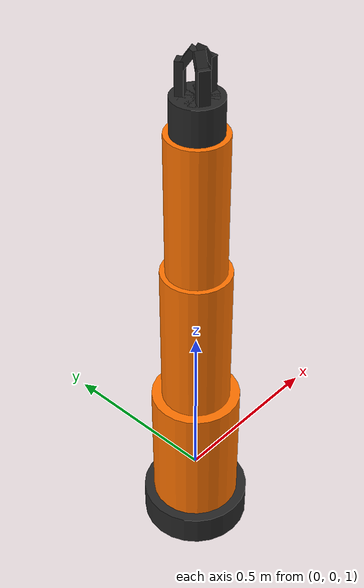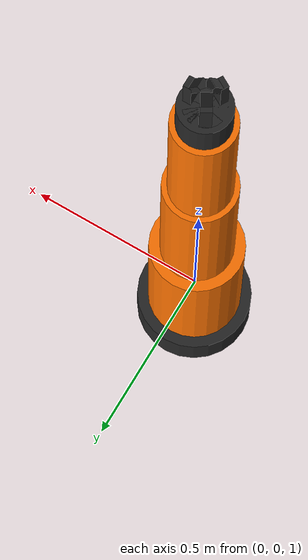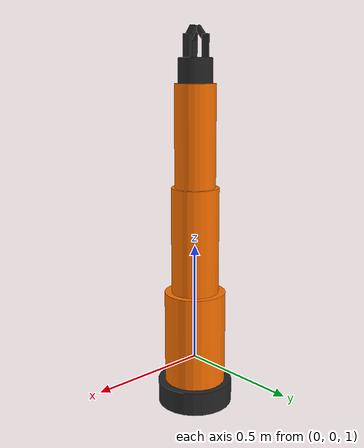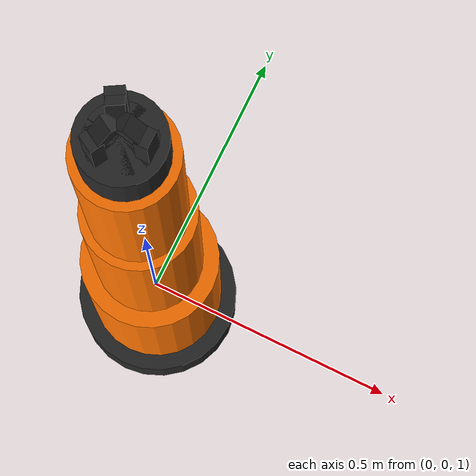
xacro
<?xml version="1.0"?>
<!-- Single MRF sorting arm + ros2_control. -->
<robot xmlns:xacro="http://www.ros.org/wiki/xacro" name="kr_arm">

  <xacro:include filename="$(find mrf_description)/urdf/kr_arm.xacro"/>

  <!-- shared world frame -->
  <link name="world"/>

  <!-- single arm, mounted at origin, reaching the belt from +Y -->
  <xacro:kr_arm prefix="a1_" mount_x="0"  mount_y="0"     mount_z="0.80"
                mount_yaw="0"       color="1.0 0.45 0.0 1.0"/>

  <!-- ros2_control: one GazeboSystem driving the arm joints -->
  <xacro:macro name="arm_jc" params="name">
    <joint name="${name}">
      <command_interface name="position"/>
      <state_interface name="position"/>
      <state_interface name="velocity"/>
    </joint>
  </xacro:macro>

  <ros2_control name="GazeboSystem" type="system">
    <hardware><plugin>gazebo_ros2_control/GazeboSystem</plugin></hardware>
    <xacro:arm_jc name="a1_joint1"/><xacro:arm_jc name="a1_joint2"/><xacro:arm_jc name="a1_joint3"/>
    <xacro:arm_jc name="a1_joint4"/><xacro:arm_jc name="a1_joint5"/><xacro:arm_jc name="a1_joint6"/>
    <xacro:arm_jc name="a1_finger1_joint"/><xacro:arm_jc name="a1_finger2_joint"/><xacro:arm_jc name="a1_finger3_joint"/>
  </ros2_control>

  <gazebo>
    <plugin filename="libgazebo_ros2_control.so" name="gazebo_ros2_control">
      <parameters>$(find mrf_description)/config/controllers.yaml</parameters>
    </plugin>
  </gazebo>

</robot>

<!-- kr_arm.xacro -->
<robot xmlns:xacro="http://www.ros.org/wiki/xacro" name="kr_arm">

  <xacro:property name="d1" value="0.40"/>
  <xacro:property name="a2" value="0.45"/>
  <xacro:property name="d4" value="0.42"/>
  <xacro:property name="d6" value="0.15"/>

  <!-- top-level helper macros (defined once) -->
  <xacro:macro name="cyl_link" params="name length radius mat *origin">
    <link name="${name}">
      <visual>
        <xacro:insert_block name="origin"/>
        <geometry><cylinder length="${length}" radius="${radius}"/></geometry>
        <material name="${mat}"/>
      </visual>
      <inertial>
        <mass value="2.0"/>
        <inertia ixx="0.02" ixy="0" ixz="0" iyy="0.02" iyz="0" izz="0.02"/>
      </inertial>
    </link>
  </xacro:macro>

  <xacro:macro name="claw_finger" params="fname parent mat px py yaw">
    <link name="${fname}">
      <!-- proximal segment, points along +Z (toward the workpiece) -->
      <visual>
        <origin xyz="0 0 0.05"/>
        <geometry><box size="0.022 0.03 0.10"/></geometry>
        <material name="${mat}"/>
      </visual>
      <!-- hooked tip, angled inward (toward local -X) for a claw look -->
      <visual>
        <origin xyz="-0.018 0 0.105" rpy="0 -0.6 0"/>
        <geometry><box size="0.02 0.028 0.055"/></geometry>
        <material name="${mat}"/>
      </visual>
      <inertial>
        <mass value="0.05"/>
        <inertia ixx="0.0001" ixy="0" ixz="0" iyy="0.0001" iyz="0" izz="0.0001"/>
      </inertial>
    </link>
    <joint name="${fname}_joint" type="revolute">
      <parent link="${parent}"/><child link="${fname}"/>
      <origin xyz="${px} ${py} 0.04" rpy="0 0 ${yaw}"/>
      <axis xyz="0 -1 0"/>
      <limit lower="-0.2" upper="1.2" effort="20" velocity="3.0"/>
    </joint>
  </xacro:macro>

  <!-- the arm itself -->
  <xacro:macro name="kr_arm" params="prefix mount_x mount_y mount_z mount_yaw color">

    <material name="${prefix}arm_color"><color rgba="${color}"/></material>
    <material name="${prefix}dark"><color rgba="0.15 0.15 0.15 1.0"/></material>

    <joint name="${prefix}world_joint" type="fixed">
      <parent link="world"/><child link="${prefix}base_link"/>
      <origin xyz="${mount_x} ${mount_y} ${mount_z}" rpy="0 0 ${mount_yaw}"/>
    </joint>

    <link name="${prefix}base_link">
      <visual>
        <origin xyz="0 0 0.05"/>
        <geometry><cylinder length="0.1" radius="0.16"/></geometry>
        <material name="${prefix}dark"/>
      </visual>
      <inertial>
        <mass value="10.0"/>
        <inertia ixx="0.1" ixy="0" ixz="0" iyy="0.1" iyz="0" izz="0.1"/>
      </inertial>
    </link>

    <xacro:cyl_link name="${prefix}link1" length="${d1}" radius="0.13" mat="${prefix}arm_color">
      <origin xyz="0 0 ${d1/2}"/>
    </xacro:cyl_link>
    <joint name="${prefix}joint1" type="revolute">
      <parent link="${prefix}base_link"/><child link="${prefix}link1"/>
      <origin xyz="0 0 0.1"/><axis xyz="0 0 1"/>
      <limit lower="-3.5" upper="3.5" effort="200" velocity="2.5"/>
    </joint>

    <xacro:cyl_link name="${prefix}link2" length="${a2}" radius="0.10" mat="${prefix}arm_color">
      <origin xyz="0 0 ${a2/2}"/>
    </xacro:cyl_link>
    <joint name="${prefix}joint2" type="revolute">
      <parent link="${prefix}link1"/><child link="${prefix}link2"/>
      <origin xyz="0 0 ${d1}"/><axis xyz="0 1 0"/>
      <limit lower="-2.5" upper="2.5" effort="200" velocity="2.0"/>
    </joint>

    <xacro:cyl_link name="${prefix}link3" length="${d4}" radius="0.085" mat="${prefix}arm_color">
      <origin xyz="0 0 ${d4/2}"/>
    </xacro:cyl_link>
    <joint name="${prefix}joint3" type="revolute">
      <parent link="${prefix}link2"/><child link="${prefix}link3"/>
      <origin xyz="0 0 ${a2}"/><axis xyz="0 1 0"/>
      <limit lower="-2.8" upper="2.8" effort="200" velocity="2.0"/>
    </joint>

    <xacro:cyl_link name="${prefix}link4" length="0.10" radius="0.07" mat="${prefix}dark">
      <origin xyz="0 0 0.05"/>
    </xacro:cyl_link>
    <joint name="${prefix}joint4" type="revolute">
      <parent link="${prefix}link3"/><child link="${prefix}link4"/>
      <origin xyz="0 0 ${d4}"/><axis xyz="0 0 1"/>
      <limit lower="-3.14" upper="3.14" effort="50" velocity="3.0"/>
    </joint>

    <xacro:cyl_link name="${prefix}link5" length="0.08" radius="0.06" mat="${prefix}arm_color">
      <origin xyz="0 0 0.0"/>
    </xacro:cyl_link>
    <joint name="${prefix}joint5" type="revolute">
      <parent link="${prefix}link4"/><child link="${prefix}link5"/>
      <origin xyz="0 0 0.0"/><axis xyz="0 1 0"/>
      <limit lower="-2.8" upper="2.8" effort="50" velocity="3.0"/>
    </joint>

    <link name="${prefix}link6">
      <visual>
        <origin xyz="0 0 0.025"/>
        <geometry><cylinder length="0.05" radius="0.05"/></geometry>
        <material name="${prefix}dark"/>
      </visual>
      <inertial>
        <mass value="0.5"/>
        <inertia ixx="0.001" ixy="0" ixz="0" iyy="0.001" iyz="0" izz="0.001"/>
      </inertial>
    </link>
    <joint name="${prefix}joint6" type="revolute">
      <parent link="${prefix}link5"/><child link="${prefix}link6"/>
      <origin xyz="0 0 0.0"/><axis xyz="0 0 1"/>
      <limit lower="-3.14" upper="3.14" effort="50" velocity="3.0"/>
    </joint>

    <!-- round palm of the claw -->
    <link name="${prefix}gripper_base">
      <visual>
        <origin xyz="0 0 0.025"/>
        <geometry><cylinder length="0.05" radius="0.055"/></geometry>
        <material name="${prefix}dark"/>
      </visual>
      <inertial>
        <mass value="0.3"/>
        <inertia ixx="0.0005" ixy="0" ixz="0" iyy="0.0005" iyz="0" izz="0.0005"/>
      </inertial>
    </link>
    <joint name="${prefix}gripper_mount" type="fixed">
      <parent link="${prefix}link6"/><child link="${prefix}gripper_base"/>
      <origin xyz="0 0 0.05"/>
    </joint>

    <!-- three claw fingers spaced 120 deg around the palm -->
    <xacro:claw_finger fname="${prefix}finger1" parent="${prefix}gripper_base" mat="${prefix}dark"
                       px="0.042"  py="0.0"    yaw="0"/>
    <xacro:claw_finger fname="${prefix}finger2" parent="${prefix}gripper_base" mat="${prefix}dark"
                       px="-0.021" py="0.036"  yaw="2.0944"/>
    <xacro:claw_finger fname="${prefix}finger3" parent="${prefix}gripper_base" mat="${prefix}dark"
                       px="-0.021" py="-0.036" yaw="-2.0944"/>

    <link name="${prefix}tcp"/>
    <joint name="${prefix}tcp_joint" type="fixed">
      <parent link="${prefix}link6"/><child link="${prefix}tcp"/>
      <origin xyz="0 0 ${d6}"/>
    </joint>

    <gazebo reference="${prefix}link1"><material>Gazebo/Orange</material></gazebo>
    <gazebo reference="${prefix}link2"><material>Gazebo/Orange</material></gazebo>
    <gazebo reference="${prefix}link3"><material>Gazebo/Orange</material></gazebo>
    <gazebo reference="${prefix}link5"><material>Gazebo/Orange</material></gazebo>
    <gazebo reference="${prefix}base_link"><material>Gazebo/FlatBlack</material></gazebo>
    <gazebo reference="${prefix}link4"><material>Gazebo/FlatBlack</material></gazebo>
    <gazebo reference="${prefix}link6"><material>Gazebo/FlatBlack</material></gazebo>
    <gazebo reference="${prefix}gripper_base"><material>Gazebo/FlatBlack</material></gazebo>
    <gazebo reference="${prefix}finger1"><material>Gazebo/FlatBlack</material></gazebo>
    <gazebo reference="${prefix}finger2"><material>Gazebo/FlatBlack</material></gazebo>
    <gazebo reference="${prefix}finger3"><material>Gazebo/FlatBlack</material></gazebo>

  </xacro:macro>
</robot>
